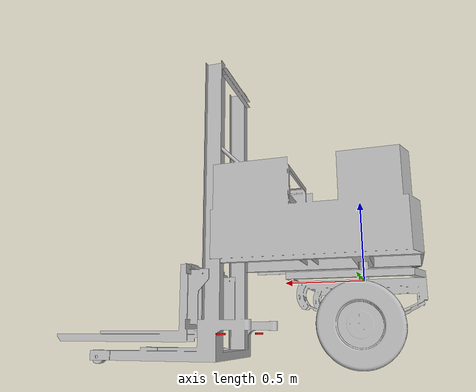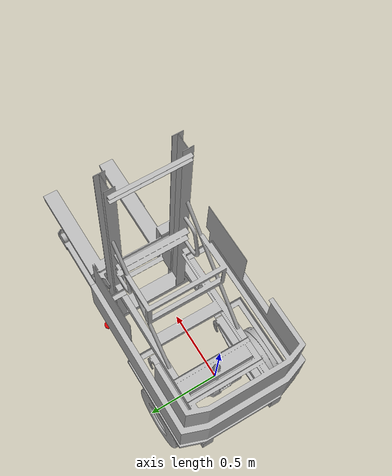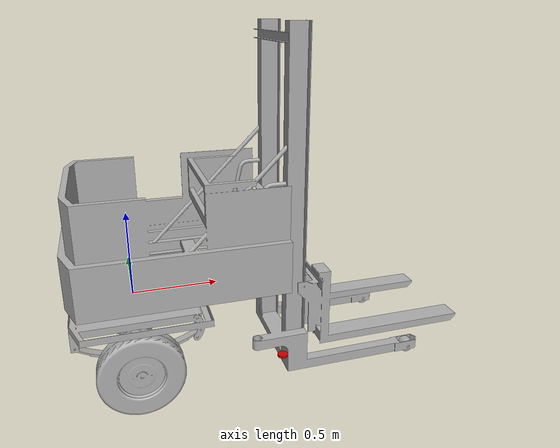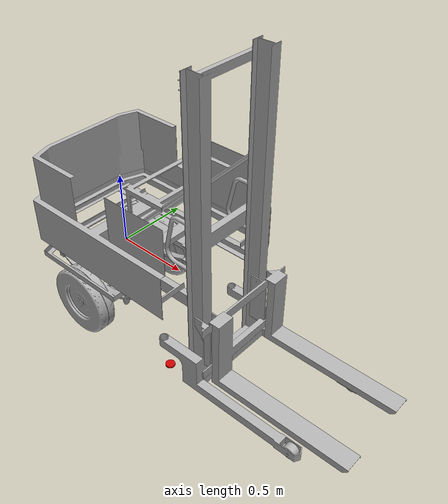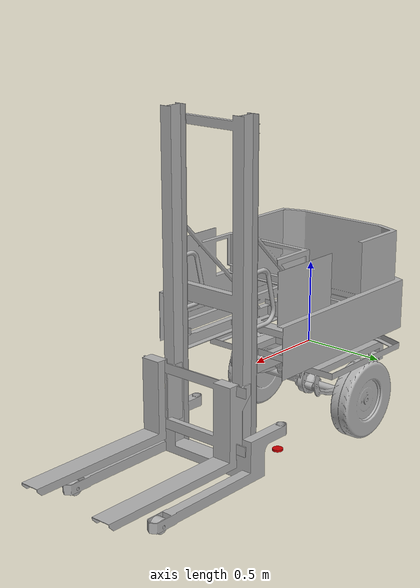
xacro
<?xml version="1.0" ?>
<robot name="model" xmlns:xacro="http://www.ros.org/wiki/xacro">

<xacro:include filename="$(find agv_description)/urdf/materials.xacro" />
<xacro:include filename="$(find agv_description)/urdf/model.ros2control" />
<xacro:include filename="$(find agv_description)/urdf/model.gazebo" />
<xacro:include filename="$(find agv_description)/urdf/sensors.xacro" />

<link name="base_link">
  <inertial>
    <origin xyz="0.1595846051428766 0.001628061693118389 0.3212324983015764" rpy="0 0 0"/>
    <mass value="74.92687542221871"/>
    <inertia ixx="11.521815" iyy="13.012549" izz="19.198561" ixy="-0.104416" iyz="-0.011996" ixz="-0.669571"/>
  </inertial>
  <visual>
    <origin xyz="0 0 0" rpy="0 0 0"/>
    <geometry>
      <mesh filename="file://$(find agv_description)/meshes/base_link.stl" scale="0.001 0.001 0.001"/>
    </geometry>
    <material name="silver"/>
  </visual>
  <collision>
    <origin xyz="0 0 0" rpy="0 0 0"/>
    <geometry>
      <mesh filename="file://$(find agv_description)/meshes/base_link.stl" scale="0.001 0.001 0.001"/>
    </geometry>
  </collision>
</link>

<link name="steering_1">
  <inertial>
    <origin xyz="-0.0002292488980326907 -0.03933024782494826 -0.17867777408636726" rpy="0 0 0"/>
    <mass value="76.54947604055778"/>
    <inertia ixx="3.654942" iyy="2.105298" izz="4.532864" ixy="-0.033032" iyz="-0.01099" ixz="0.024409"/>
  </inertial>
  <visual>
    <origin xyz="0.0 -0.0 0.0" rpy="0 0 0"/>
    <geometry>
      <mesh filename="file://$(find agv_description)/meshes/steering_1.stl" scale="0.001 0.001 0.001"/>
    </geometry>
    <material name="silver"/>
  </visual>
  <collision>
    <origin xyz="0.0 -0.0 0.0" rpy="0 0 0"/>
    <geometry>
      <mesh filename="file://$(find agv_description)/meshes/steering_1.stl" scale="0.001 0.001 0.001"/>
    </geometry>
  </collision>
</link>

<link name="rr_wheel_1">
  <inertial>
    <origin xyz="3.298326510048355e-07 -0.05488071442175224 -1.3094392831147772e-07" rpy="0 0 0"/>
    <mass value="8.066605493230483"/>
    <inertia ixx="0.102004" iyy="0.184234" izz="0.102004" ixy="0.0" iyz="-0.0" ixz="0.0"/>
  </inertial>
  <visual>
    <origin xyz="-0.0 0.335 0.27" rpy="0 0 0"/>
    <geometry>
      <mesh filename="file://$(find agv_description)/meshes/rr_wheel_1.stl" scale="0.001 0.001 0.001"/>
    </geometry>
    <material name="silver"/>
  </visual>
  <collision>
    <origin xyz="-0.0 0.335 0.27" rpy="0 0 0"/>
    <geometry>
      <mesh filename="file://$(find agv_description)/meshes/rr_wheel_1.stl" scale="0.001 0.001 0.001"/>
    </geometry>
  </collision>
</link>

<link name="lr_wheel_1">
  <inertial>
    <origin xyz="-6.410595517536421e-08 0.054880694868648994 -4.107795414931559e-08" rpy="0 0 0"/>
    <mass value="8.066582577854387"/>
    <inertia ixx="0.102003" iyy="0.184233" izz="0.102003" ixy="0.0" iyz="-0.0" ixz="-0.0"/>
  </inertial>
  <visual>
    <origin xyz="-0.0 -0.335 0.27" rpy="0 0 0"/>
    <geometry>
      <mesh filename="file://$(find agv_description)/meshes/lr_wheel_1.stl" scale="0.001 0.001 0.001"/>
    </geometry>
    <material name="silver"/>
  </visual>
  <collision>
    <origin xyz="-0.0 -0.335 0.27" rpy="0 0 0"/>
    <geometry>
      <mesh filename="file://$(find agv_description)/meshes/lr_wheel_1.stl" scale="0.001 0.001 0.001"/>
    </geometry>
  </collision>
</link>

<link name="stacker_1">
  <inertial>
    <origin xyz="0.1667105127366031 0.2899679742039218 -0.20090477981280133" rpy="0 0 0"/>
    <mass value="114.38554635922912"/>
    <inertia ixx="43.717987" iyy="40.031482" izz="16.275385" ixy="-0.000734" iyz="0.001845" ixz="5.713124"/>
  </inertial>
  <visual>
    <origin xyz="-0.849999 0.290502 -0.114" rpy="0 0 0"/>
    <geometry>
      <mesh filename="file://$(find agv_description)/meshes/stacker_1.stl" scale="0.001 0.001 0.001"/>
    </geometry>
    <material name="silver"/>
  </visual>
  <collision>
    <origin xyz="-0.849999 0.290502 -0.114" rpy="0 0 0"/>
    <geometry>
      <mesh filename="file://$(find agv_description)/meshes/stacker_1.stl" scale="0.001 0.001 0.001"/>
    </geometry>
  </collision>
</link>

<link name="rf_wheel_1">
  <inertial>
    <origin xyz="4.713639616404919e-07 0.03000045322132716 5.773159728050814e-15" rpy="0 0 0"/>
    <mass value="0.29853713005801513"/>
    <inertia ixx="0.000202" iyy="0.000278" izz="0.000202" ixy="0.0" iyz="-0.0" ixz="0.0"/>
  </inertial>
  <visual>
    <origin xyz="-1.659999 0.350502 0.4615" rpy="0 0 0"/>
    <geometry>
      <mesh filename="file://$(find agv_description)/meshes/rf_wheel_1.stl" scale="0.001 0.001 0.001"/>
    </geometry>
    <material name="silver"/>
  </visual>
  <collision>
    <origin xyz="-1.659999 0.350502 0.4615" rpy="0 0 0"/>
    <geometry>
      <mesh filename="file://$(find agv_description)/meshes/rf_wheel_1.stl" scale="0.001 0.001 0.001"/>
    </geometry>
  </collision>
</link>

<link name="lf_wheel_1">
  <inertial>
    <origin xyz="4.7136395964209044e-07 0.030000453221327716 8.049116928532385e-15" rpy="0 0 0"/>
    <mass value="0.29853713005801513"/>
    <inertia ixx="0.000202" iyy="0.000278" izz="0.000202" ixy="-0.0" iyz="0.0" ixz="0.0"/>
  </inertial>
  <visual>
    <origin xyz="-1.659999 -0.289498 0.4615" rpy="0 0 0"/>
    <geometry>
      <mesh filename="file://$(find agv_description)/meshes/lf_wheel_1.stl" scale="0.001 0.001 0.001"/>
    </geometry>
    <material name="silver"/>
  </visual>
  <collision>
    <origin xyz="-1.659999 -0.289498 0.4615" rpy="0 0 0"/>
    <geometry>
      <mesh filename="file://$(find agv_description)/meshes/lf_wheel_1.stl" scale="0.001 0.001 0.001"/>
    </geometry>
  </collision>
</link>

<link name="fork_1">
  <inertial>
    <origin xyz="-0.8905779927845272 1.7050984532213205 -0.4077146416267014" rpy="0 0 0"/>
    <mass value="29.10153015506912"/>
    <inertia ixx="2.520675" iyy="3.044447" izz="4.071024" ixy="0.020622" iyz="0.037495" ixz="0.767025"/>
  </inertial>
  <visual>
    <origin xyz="-2.081831 1.7056 -0.252765" rpy="0 0 0"/>
    <geometry>
      <mesh filename="file://$(find agv_description)/meshes/fork_1.stl" scale="0.001 0.001 0.001"/>
    </geometry>
    <material name="silver"/>
  </visual>
  <collision>
    <origin xyz="-2.081831 1.7056 -0.252765" rpy="0 0 0"/>
    <geometry>
      <mesh filename="file://$(find agv_description)/meshes/fork_1.stl" scale="0.001 0.001 0.001"/>
    </geometry>
  </collision>
</link>

<link name="left_lidar_link">
  <inertial>
    <origin xyz="0.0 0.0 0.0" rpy="0 0 0"/>
    <mass value="0.1"/>
    <inertia ixx="0.0001" iyy="0.0001" izz="0.0001" ixy="0.0" iyz="0.0" ixz="0.0"/>
  </inertial>
  <visual>
    <origin xyz="0.0 0.0 0.0" rpy="0 0 0"/>
    <geometry>
      <cylinder radius="0.03" length="0.012"/>
    </geometry>
    <material name="red"/>
  </visual>
  <collision>
    <origin xyz="0.0 0.0 0.0" rpy="0 0 0"/>
    <geometry>
      <cylinder radius="0.03" length="0.012"/>
    </geometry>
  </collision>
</link>

<link name="right_lidar_link">
  <inertial>
    <origin xyz="0.0 0.0 0.0" rpy="0 0 0"/>
    <mass value="0.1"/>
    <inertia ixx="0.0001" iyy="0.0001" izz="0.0001" ixy="0.0" iyz="0.0" ixz="0.0"/>
  </inertial>
  <visual>
    <origin xyz="0.0 0.0 0.0" rpy="0 0 0"/>
    <geometry>
      <cylinder radius="0.03" length="0.012"/>
    </geometry>
    <material name="red"/>
  </visual>
  <collision>
    <origin xyz="0.0 0.0 0.0" rpy="0 0 0"/>
    <geometry>
      <cylinder radius="0.03" length="0.012"/>
    </geometry>
  </collision>
</link>

<link name="merge_lidar_link">
  <inertial>
    <origin xyz="0.0 0.0 0.0" rpy="0 0 0"/>
    <mass value="0.1"/>
    <inertia ixx="0.0001" iyy="0.0001" izz="0.0001" ixy="0.0" iyz="0.0" ixz="0.0"/>
  </inertial>
  <visual>
    <origin xyz="0.0 0.0 0.0" rpy="0 0 0"/>
    <geometry>
      <cylinder radius="0.03" length="0.012"/>
    </geometry>
    <material name="red"/>
  </visual>
  <collision>
    <origin xyz="0.0 0.0 0.0" rpy="0 0 0"/>
    <geometry>
      <cylinder radius="0.03" length="0.012"/>
    </geometry>
  </collision>
</link>

<joint name="steering_joint" type="revolute">
  <origin xyz="0.0 0.0 0.0" rpy="0 0 0"/>
  <parent link="base_link"/>
  <child link="steering_1"/>
  <axis xyz="0.0 0.0 1.0"/>
  <limit upper="0.453786" lower="-0.453786" effort="100" velocity="100"/>
</joint>

<joint name="rr_wheel_joint" type="continuous">
  <origin xyz="0.0 -0.335 -0.27" rpy="0 0 0"/>
  <parent link="steering_1"/>
  <child link="rr_wheel_1"/>
  <axis xyz="0.0 -1.0 0.0"/>
</joint>

<joint name="lr_wheel_joint" type="continuous">
  <origin xyz="0.0 0.335 -0.27" rpy="0 0 0"/>
  <parent link="steering_1"/>
  <child link="lr_wheel_1"/>
  <axis xyz="0.0 1.0 0.0"/>
</joint>

<joint name="Rigid 16" type="fixed">
  <origin xyz="0.849999 -0.290502 0.114" rpy="0 0 0"/>
  <parent link="base_link"/>
  <child link="stacker_1"/>
</joint>

<joint name="rf_wheel_joint" type="continuous">
  <origin xyz="0.81 -0.06 -0.5755" rpy="0 0 0"/>
  <parent link="stacker_1"/>
  <child link="rf_wheel_1"/>
  <axis xyz="0.0 -1.0 -0.0"/>
</joint>

<joint name="lf_wheel_joint" type="continuous">
  <origin xyz="0.81 0.58 -0.5755" rpy="0 0 0"/>
  <parent link="stacker_1"/>
  <child link="lf_wheel_1"/>
  <axis xyz="0.0 -1.0 -0.0"/>
</joint>

<joint name="lifter_joint" type="prismatic">
  <origin xyz="1.231832 -1.415098 0.138765" rpy="0 0 0"/>
  <parent link="stacker_1"/>
  <child link="fork_1"/>
  <axis xyz="0.0 0.0 1.0"/>
  <limit upper="1.2" lower="0.0" effort="100" velocity="100"/>
</joint>

<joint name="left_lidar_joint" type="fixed">
  <origin xyz="0.8 0.4 -0.32" rpy="0 0 0"/>
  <parent link="base_link"/>
  <child link="left_lidar_link"/>
</joint>

<joint name="right_lidar_joint" type="fixed">
  <origin xyz="0.8 -0.4 -0.32" rpy="0 0 0"/>
  <parent link="base_link"/>
  <child link="right_lidar_link"/>
</joint>

<joint name="merge_lidar_joint" type="fixed">
  <origin xyz="0.0 0.0 -0.32" rpy="0 0 0"/>
  <parent link="base_link"/>
  <child link="merge_lidar_link"/>
</joint>

</robot>

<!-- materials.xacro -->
<robot name="model" xmlns:xacro="http://www.ros.org/wiki/xacro" >

<material name="silver">
  <color rgba="0.700 0.700 0.700 1.000"/>
</material>

<material name="red">
  <color rgba="0.800 0.000 0.000 1.000"/>
</material>

</robot>

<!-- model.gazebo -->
<robot name="model" xmlns:xacro="http://www.ros.org/wiki/xacro" >

<xacro:property name="body_color" value="Gazebo/Silver" />

<gazebo reference="base_link">
  <material>${body_color}</material>
  <mu1>0.2</mu1>
  <mu2>0.2</mu2>
  <self_collide>true</self_collide>
  <gravity>true</gravity>
</gazebo>

<gazebo reference="steering_1">
  <material>${body_color}</material>
  <mu1>0.2</mu1>
  <mu2>0.2</mu2>
  <self_collide>true</self_collide>
</gazebo>

<gazebo reference="rr_wheel_1">
  <material>${body_color}</material>
  <mu1>0.2</mu1>
  <mu2>0.2</mu2>
  <self_collide>true</self_collide>
</gazebo>

<gazebo reference="lr_wheel_1">
  <material>${body_color}</material>
  <mu1>0.2</mu1>
  <mu2>0.2</mu2>
  <self_collide>true</self_collide>
</gazebo>

<gazebo reference="stacker_1">
  <material>${body_color}</material>
  <mu1>0.2</mu1>
  <mu2>0.2</mu2>
  <self_collide>true</self_collide>
</gazebo>

<gazebo reference="rf_wheel_1">
  <material>${body_color}</material>
  <mu1>0.2</mu1>
  <mu2>0.2</mu2>
  <self_collide>true</self_collide>
</gazebo>

<gazebo reference="lf_wheel_1">
  <material>${body_color}</material>
  <mu1>0.2</mu1>
  <mu2>0.2</mu2>
  <self_collide>true</self_collide>
</gazebo>

<gazebo reference="fork_1">
  <material>${body_color}</material>
  <mu1>0.2</mu1>
  <mu2>0.2</mu2>
  <self_collide>true</self_collide>
</gazebo>

</robot>
